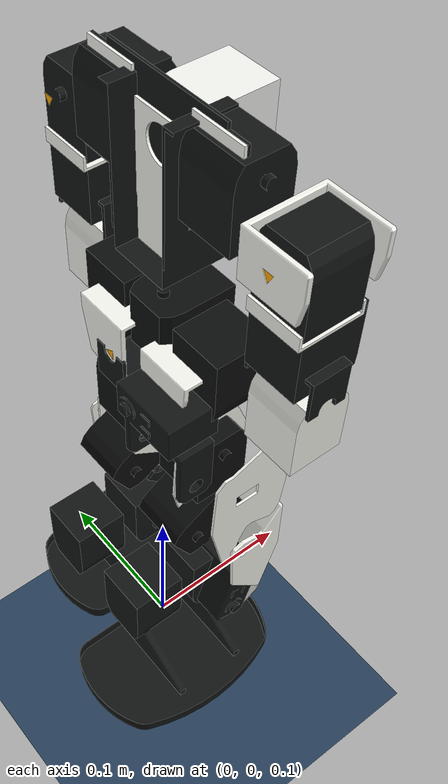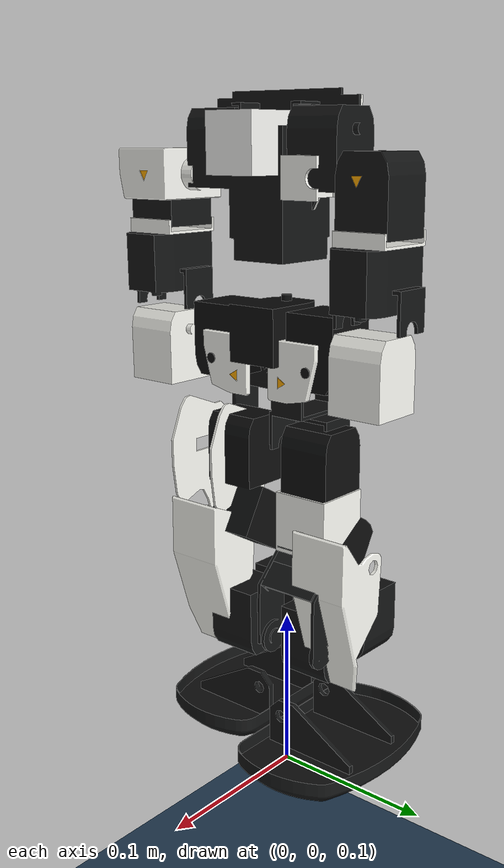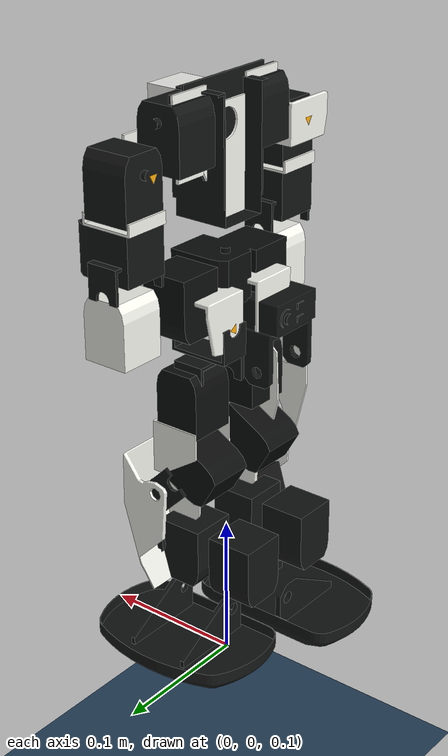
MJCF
<mujoco model="roid1_20260103d_mjcf scene">
  <include file="roid1_20260103d_mjcf.xml"/>

  <statistic center="0 0 0.500000" extent="0.800000"/>

  <visual>
    <headlight diffuse="0.6 0.6 0.6" ambient="0.3 0.3 0.3" specular="0 0 0"/>
    <rgba haze="0.15 0.25 0.35 1"/>
    <global azimuth="-130" elevation="-20"/>
  </visual>

  <asset>
    <texture type="skybox" builtin="gradient" rgb1="0.3 0.5 0.7" rgb2="0 0 0" width="512" height="3072"/>
    <texture type="2d" name="groundplane" builtin="checker" mark="edge" rgb1="0.2 0.3 0.4" rgb2="0.1 0.2 0.3"
      markrgb="0.8 0.8 0.8" width="300" height="300"/>
    <material name="groundplane" texture="groundplane" texuniform="true" texrepeat="5 5" reflectance="0.2"/>
  </asset>

  <worldbody>
    <!-- Ground/Environment -->
    <light pos="0 0 1.5" dir="0 0 -1" directional="true"/>
    <geom name="floor" size="0 0 0.05" type="plane" material="groundplane" group="0"/>
  </worldbody>
</mujoco>

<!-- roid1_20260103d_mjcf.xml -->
<mujoco model="roid1_20260103d_mjcf">
  <compiler angle="radian" meshdir="assets" autolimits="true" />

  <option cone="elliptic" impratio="100" />

  <default>
    <!-- 共通設定 -->
    <joint damping="0.1" armature="0.01" frictionloss="0.2"/>
    <motor ctrlrange="-23.7 23.7"/>
    <geom friction="0.4" margin="0.001" condim="3"/>
    <!-- コライダー用：group=0 -->
    <default class="collision">
      <geom group="0"/>
    </default>
    <!-- ビジュアル用：group=1（衝突しない） -->
    <default class="visual">
      <geom contype="0" conaffinity="0" group="1"/>
    </default>
  </default>

  <asset>
    <material name="metal" rgba=".9 .95 .95 1" />
    <material name="black" rgba="0 0 0 1" />
    <material name="white" rgba="1 1 1 1" />
    <material name="gray" rgba="0.671705 0.692426 0.774270 1" />

    <mesh name="c_chest" file="c_chest.obj" />
    <mesh name="c_chest_dec1" file="c_chest_dec1.obj" />
    <mesh name="c_chest_dec2" file="c_chest_dec2.obj" />
    <mesh name="c_head" file="c_head.obj" />
    <mesh name="c_waist" file="c_waist.obj" />
    <mesh name="l_ankle" file="l_ankle.obj" />
    <mesh name="l_arm_lower" file="l_arm_lower.obj" />
    <mesh name="l_arm_upper" file="l_arm_upper.obj" />
    <mesh name="l_arm_upper_dec1" file="l_arm_upper_dec1.obj" />
    <mesh name="l_elbow" file="l_elbow.obj" />
    <mesh name="l_foot_large" file="l_foot_large.obj" />
    <mesh name="l_hipjoint_lower" file="l_hipjoint_lower.obj" />
    <mesh name="l_hipjoint_upper" file="l_hipjoint_upper.obj" />
    <mesh name="l_hipjoint_upper_dec1" file="l_hipjoint_upper_dec1.obj" />
    <mesh name="l_leg_lower" file="l_leg_lower.obj" />
    <mesh name="l_leg_lower_dec1" file="l_leg_lower_dec1.obj" />
    <mesh name="l_leg_upper" file="l_leg_upper.obj" />
    <mesh name="l_leg_upper_dec1" file="l_leg_upper_dec1.obj" />
    <mesh name="l_shoulder" file="l_shoulder.obj" />
    <mesh name="l_shoulder_dec1" file="l_shoulder_dec1.obj" />
    <mesh name="r_ankle" file="r_ankle.obj" />
    <mesh name="r_arm_lower" file="r_arm_lower.obj" />
    <mesh name="r_arm_upper" file="r_arm_upper.obj" />
    <mesh name="r_arm_upper_dec1" file="r_arm_upper_dec1.obj" />
    <mesh name="r_elbow" file="r_elbow.obj" />
    <mesh name="r_foot_large" file="r_foot_large.obj" />
    <mesh name="r_hipjoint_lower" file="r_hipjoint_lower.obj" />
    <mesh name="r_hipjoint_upper" file="r_hipjoint_upper.obj" />
    <mesh name="r_hipjoint_upper_dec1" file="r_hipjoint_upper_dec1.obj" />
    <mesh name="r_leg_lower" file="r_leg_lower.obj" />
    <mesh name="r_leg_lower_dec1" file="r_leg_lower_dec1.obj" />
    <mesh name="r_leg_upper" file="r_leg_upper.obj" />
    <mesh name="r_leg_upper_dec1" file="r_leg_upper_dec1.obj" />
    <mesh name="r_shoulder" file="r_shoulder.obj" />
    <mesh name="r_shoulder_dec1" file="r_shoulder_dec1.obj" />
  </asset>

  <worldbody>
    <body name="base_link" pos="0 0 0.4">
      <freejoint />
      <body name="c_waist">
        <inertial pos="0 0 0" mass="0.1428" fullinertia="0.00007919 0.00007087 0.0001035 0.00000007 -0.00000104 -0.00000051" />
        <!-- ビジュアル（表示用） -->
        <geom class="visual" type="mesh" mesh="c_waist" rgba="0.043 0.047 0.047 1.0" group="1"/>
        <!-- コライダー（衝突判定用） -->
        <geom class="collision" type="box" size="0.0205 0.03205 0.01525" pos="-0.0115 0.0 0.0" quat="1.0 0.0 0.0 0.0" group="3"/>
        <body name="c_chest" pos="0.0 0.0 0.01975">
          <joint name="c_chest_joint" type="hinge" pos="0 0 0" axis="0 0 1" range="-3.141592653589793 3.141592653589793" limited="true" margin="0.05" armature="0.01" frictionloss="0.08" damping="18" />
          <inertial pos="-0.009945 -0.000138 0.032669" mass="0.4215" fullinertia="0.00069128 0.00091017 0.0009531 0.00000049 0.00000222 0.00000725" />
          <!-- ビジュアル（表示用） -->
          <geom class="visual" type="mesh" mesh="c_chest" rgba="0.071 0.075 0.075 1.0" group="1"/>
          <!-- コライダー（衝突判定用） -->
          <geom class="collision" type="box" size="0.05365 0.04655 0.0328" pos="-0.0181 -0.0002 0.0321" quat="1.0 0.0 0.0 0.0" group="3"/>
          <body name="c_head" pos="0.01602 0.0 0.0624">
            <joint name="c_head_joint" type="hinge" pos="0 0 0" axis="0 0 1" range="-3.141592653589793 3.141592653589793" limited="true" margin="0.05" armature="0.01" frictionloss="0.08" damping="18" />
            <inertial pos="0.004414 0.000003 0.02119" mass="0.013" fullinertia="0.00000411 0.00000529 0.00000498 -0.00000003 0.00000011 -0.00000005" />
            <!-- ビジュアル（表示用） -->
            <geom class="visual" type="mesh" mesh="c_head" rgba="0.949 0.949 0.937 1.0" group="1"/>
            <!-- コライダー（衝突判定用） -->
            <geom class="collision" type="box" size="0.0245 0.015 0.01575" pos="0.0032 0.0 0.0237" quat="1.0 0.0 0.0 0.0" group="3"/>
          </body>
          <body name="l_shoulder" pos="0.016114 0.04885 0.0454">
            <joint name="l_shoulder_joint" type="hinge" pos="0 0 0" axis="0 1 0" range="-3.141592653589793 3.141592653589793" limited="true" margin="0.05" armature="0.01" frictionloss="0.08" damping="18" />
            <inertial pos="-0.000143 0.018036 0.000103" mass="0.014" fullinertia="0.00000306 0.00000465 0.00000567 0.00000001 0.00000007 0.00000011" />
            <!-- ビジュアル（表示用） -->
            <geom class="visual" type="mesh" mesh="l_shoulder" rgba="0.957 0.957 0.933 1.0" group="1"/>
            <!-- コライダー（衝突判定用） -->
            <geom class="collision" type="cylinder" size="0.0097 0.0035" pos="0.0 0.004 0.0" quat="0.7071067811865476 -0.7071067811865475 0.0 -0.0" group="3"/>
            <body name="l_arm_upper" pos="0.0 0.02555 -0.0">
              <joint name="l_arm_upper_joint" type="hinge" pos="0 0 0" axis="1 0 0" range="-0.261799387799149 3.403392041388943" limited="true" margin="0.05" armature="0.01" frictionloss="0.08" damping="18" />
              <inertial pos="-0.006126 0.000034 -0.031016" mass="0.098" fullinertia="0.00006512 0.00007176 0.0000327 0.00000023 -0.00000948 0.00000013" />
              <!-- ビジュアル（表示用） -->
              <geom class="visual" type="mesh" mesh="l_arm_upper" rgba="0.071 0.075 0.075 1.0" group="1"/>
              <!-- コライダー（衝突判定用） -->
              <geom class="collision" type="box" size="0.01195 0.01045 0.039" pos="-0.0032 0.0 -0.0305" quat="1.0 0.0 0.0 0.0" group="3"/>
              <body name="l_elbow" pos="-0.00035 0.0 -0.074075">
                <joint name="l_elbow_joint" type="hinge" pos="0 0 0" axis="0 0 1" range="-1.570796326794897 1.570796326794897" limited="true" margin="0.05" armature="0.01" frictionloss="0.08" damping="18" />
                <inertial pos="-0.006581 0.000258 -0.014196" mass="0.044" fullinertia="0.0000105 0.00001256 0.00001357 -0.00000017 -0.00000014 0.00000016" />
                <!-- ビジュアル（表示用） -->
                <geom class="visual" type="mesh" mesh="l_elbow" rgba="0.071 0.075 0.075 1.0" group="1"/>
                <!-- コライダー（衝突判定用） -->
                <geom class="collision" type="box" size="0.0205 0.01505 0.01005" pos="-0.007 -0.0005 -0.0145" quat="1.0 0.0 0.0 0.0" group="3"/>
                <body name="l_arm_lower" pos="0.00453 0.0 -0.014575">
                  <joint name="l_arm_lower_joint" type="hinge" pos="0 0 0" axis="0 1 0" range="-2.530727415391778 0.523598775598299" limited="true" margin="0.05" armature="0.01" frictionloss="0.08" damping="18" />
                  <inertial pos="-0.002115 0.00035 -0.043518" mass="0.03" fullinertia="0.00005297 0.00005125 0.00001247 0.00000021 -0.00000013 0.0000004" />
                  <!-- ビジュアル（表示用） -->
                  <geom class="visual" type="mesh" mesh="l_arm_lower" rgba="0.957 0.957 0.929 1.0" group="1"/>
                  <!-- コライダー（衝突判定用） -->
                  <geom class="collision" type="box" size="0.01315 0.01475 0.03505" pos="-0.0022 0.0 -0.0646" quat="1.0 0.0 0.0 0.0" group="3"/>
                </body>
              </body>
              <geom class="visual" type="mesh" mesh="l_arm_upper_dec1" rgba="0.957 0.957 0.929 1.0" pos="0.0 0.0 0.0"/>
            </body>
            <geom class="visual" type="mesh" mesh="l_shoulder_dec1" rgba="1.0 0.667 0.0 1.0" pos="0.0 0.0 0.0"/>
          </body>
          <body name="r_shoulder" pos="0.016114 -0.04885 0.0454">
            <joint name="r_shoulder_joint" type="hinge" pos="0 0 0" axis="0 1 0" range="-3.141592653589793 3.141592653589793" limited="true" margin="0.05" armature="0.01" frictionloss="0.08" damping="18" />
            <inertial pos="-0.000143 -0.018036 0.000103" mass="0.014" fullinertia="0.00000306 0.00000465 0.00000567 -0.00000001 0.00000007 -0.00000011" />
            <!-- ビジュアル（表示用） -->
            <geom class="visual" type="mesh" mesh="r_shoulder" rgba="0.957 0.957 0.933 1.0" group="1"/>
            <!-- コライダー（衝突判定用） -->
            <geom class="collision" type="cylinder" size="0.0097 0.0035" pos="0.0 -0.004 0.0" quat="0.7071067811865476 0.7071067811865475 0.0 0.0" group="3"/>
            <body name="r_arm_upper" pos="0.0 -0.02555 -0.0">
              <joint name="r_arm_upper_joint" type="hinge" pos="0 0 0" axis="1 0 0" range="-3.403392041388943 0.261799387799149" limited="true" margin="0.05" armature="0.01" frictionloss="0.08" damping="18" />
              <inertial pos="-0.006126 -0.000034 -0.031016" mass="0.098" fullinertia="0.00006512 0.00007176 0.0000327 -0.00000023 -0.00000948 -0.00000013" />
              <!-- ビジュアル（表示用） -->
              <geom class="visual" type="mesh" mesh="r_arm_upper" rgba="0.071 0.075 0.075 1.0" group="1"/>
              <!-- コライダー（衝突判定用） -->
              <geom class="collision" type="box" size="0.01195 0.01045 0.039" pos="-0.0032 -0.0 -0.0305" quat="1.0 0.0 0.0 0.0" group="3"/>
              <body name="r_elbow" pos="-0.00035 -0.0 -0.074075">
                <joint name="r_elbow_joint" type="hinge" pos="0 0 0" axis="0 0 1" range="-1.570796326794897 1.570796326794897" limited="true" margin="0.05" armature="0.01" frictionloss="0.08" damping="18" />
                <inertial pos="-0.006581 -0.000258 -0.014196" mass="0.044" fullinertia="0.0000105 0.00001256 0.00001357 0.00000017 -0.00000014 -0.00000016" />
                <!-- ビジュアル（表示用） -->
                <geom class="visual" type="mesh" mesh="r_elbow" rgba="0.071 0.075 0.075 1.0" group="1"/>
                <!-- コライダー（衝突判定用） -->
                <geom class="collision" type="box" size="0.0205 0.01505 0.01005" pos="-0.007 0.0005 -0.0145" quat="1.0 0.0 0.0 0.0" group="3"/>
                <body name="r_arm_lower" pos="0.00453 -0.0 -0.014575">
                  <joint name="r_arm_lower_joint" type="hinge" pos="0 0 0" axis="0 1 0" range="-2.530727415391778 0.523598775598299" limited="true" margin="0.05" armature="0.01" frictionloss="0.08" damping="18" />
                  <inertial pos="-0.002115 -0.00035 -0.043518" mass="0.03" fullinertia="0.00005297 0.00005125 0.00001247 -0.00000021 -0.00000013 -0.0000004" />
                  <!-- ビジュアル（表示用） -->
                  <geom class="visual" type="mesh" mesh="r_arm_lower" rgba="0.957 0.957 0.929 1.0" group="1"/>
                  <!-- コライダー（衝突判定用） -->
                  <geom class="collision" type="box" size="0.01315 0.01475 0.03505" pos="-0.0022 -0.0 -0.0646" quat="1.0 0.0 0.0 0.0" group="3"/>
                </body>
              </body>
              <geom class="visual" type="mesh" mesh="r_arm_upper_dec1" rgba="0.957 0.957 0.929 1.0" pos="0.0 -0.0 0.0"/>
            </body>
            <geom class="visual" type="mesh" mesh="r_shoulder_dec1" rgba="1.0 0.667 0.0 1.0" pos="0.0 -0.0 0.0"/>
          </body>
          <geom class="visual" type="mesh" mesh="c_chest_dec1" rgba="0.957 0.957 0.933 1.0" pos="0.0 0.0 0.0"/>
          <geom class="visual" type="mesh" mesh="c_chest_dec2" rgba="0.071 0.075 0.075 1.0" pos="0.0 0.0 0.0"/>
        </body>
        <body name="l_hipjoint_upper" pos="0.0 0.02156 -0.021806">
          <joint name="l_hipjoint_upper_joint" type="hinge" pos="0 0 0" axis="0 0 1" range="-0.349065850398866 0.785398163397448" limited="true" margin="0.05" armature="0.01" frictionloss="0.08" damping="18" />
          <inertial pos="0.002365 0.002237 -0.01069" mass="0.0115" fullinertia="0.00000383 0.00000646 0.00000618 0.00000001 -0.00000019 0.00000007" />
          <!-- ビジュアル（表示用） -->
          <geom class="visual" type="mesh" mesh="l_hipjoint_upper" rgba="0.957 0.957 0.929 1.0" group="1"/>
          <!-- コライダー（衝突判定用） -->
          <geom class="collision" type="box" size="0.02275 0.014 0.002" pos="0.0031 -0.0001 -0.0017" quat="1.0 0.0 0.0 0.0" group="3"/>
          <body name="l_hipjoint_lower" pos="9.9e-05 -0.00455 -0.0232">
            <joint name="l_hipjoint_lower_joint" type="hinge" pos="0 0 0" axis="1 0 0" range="-1.047197551196598 0.523598775598299" limited="true" margin="0.05" armature="0.01" frictionloss="0.08" damping="18" />
            <inertial pos="0.003874 0.013471 -0.00485" mass="0.058" fullinertia="0.00002572 0.00001803 0.00002194 0.00000022 -0.00000016 0.00000012" />
            <!-- ビジュアル（表示用） -->
            <geom class="visual" type="mesh" mesh="l_hipjoint_lower" rgba="0.071 0.075 0.075 1.0" group="1"/>
            <!-- コライダー（衝突判定用） -->
            <geom class="collision" type="box" size="0.01505 0.02025 0.01045" pos="0.0041 0.0116 0.0" quat="1.0 0.0 0.0 0.0" group="3"/>
            <body name="l_leg_upper" pos="0.004099 0.011502 -0.038508">
              <joint name="l_leg_upper_joint" type="hinge" pos="0 0 0" axis="0 1 0" range="-1.48352986419518 1.570796326794897" limited="true" margin="0.05" armature="0.01" frictionloss="0.08" damping="18" />
              <inertial pos="0.004137 -0.00005 -0.032305" mass="0.091" fullinertia="0.00006864 0.00006946 0.0000304 0.00000008 0.00000192 0.00000033" />
              <!-- ビジュアル（表示用） -->
              <geom class="visual" type="mesh" mesh="l_leg_upper" rgba="0.043 0.047 0.047 1.0" group="1"/>
              <!-- コライダー（衝突判定用） -->
              <geom class="collision" type="box" size="0.01715 0.01705 0.03125" pos="0.0079 -0.0007 -0.022" quat="1.0 0.0 0.0 0.0" group="3"/>
              <body name="l_leg_lower" pos="0.0 0.0 -0.065008">
                <joint name="l_leg_lower_joint" type="hinge" pos="0 0 0" axis="0 1 0" range="-0.087266462599716 2.443460952792061" limited="true" margin="0.05" armature="0.01" frictionloss="0.08" damping="18" />
                <inertial pos="0.005243 0.000013 -0.04" mass="0.061" fullinertia="0.00002369 0.00002306 0.00001526 -0.00000003 -0.00000127 -0.00000055" />
                <!-- ビジュアル（表示用） -->
                <geom class="visual" type="mesh" mesh="l_leg_lower" rgba="0.071 0.075 0.075 1.0" group="1"/>
                <!-- コライダー（衝突判定用） -->
                <geom class="collision" type="box" size="0.01025 0.01505 0.02" pos="0.0033 0.0003 -0.0542" quat="0.9896513868196702 0.0 0.14349262199117932 0.0" group="3"/>
                <body name="l_ankle" pos="0.0 0.0 -0.065208">
                  <joint name="l_ankle_joint" type="hinge" pos="0 0 0" axis="0 1 0" range="-1.658062789394613 2.007128639793479" limited="true" margin="0.05" armature="0.01" frictionloss="0.08" damping="18" />
                  <inertial pos="0.001265 0.000117 -0.032317" mass="0.058" fullinertia="0.00003283 0.00002872 0.00002188 0.00000035 -0.00000054 -0.00000012" />
                  <!-- ビジュアル（表示用） -->
                  <geom class="visual" type="mesh" mesh="l_ankle" rgba="0.071 0.075 0.075 1.0" group="1"/>
                  <!-- コライダー（衝突判定用） -->
                  <geom class="collision" type="box" size="0.01505 0.02125 0.00945" pos="-0.0002 -0.0 -0.0385" quat="1.0 0.0 0.0 0.0" group="3"/>
                  <body name="l_foot_large" pos="-0.00035 -0.0115 -0.038475">
                    <joint name="l_foot_large_joint" type="hinge" pos="0 0 0" axis="1 0 0" range="-1.570796326794897 0.349065850398866" limited="true" margin="0.05" armature="0.01" frictionloss="0.08" damping="18" />
                    <inertial pos="0.000075 0.023861 -0.020448" mass="0.045" fullinertia="0.00003464 0.00005428 0.00006643 -0.00000071 0.00000022 0.0000006" />
                    <!-- ビジュアル（表示用） -->
                    <geom class="visual" type="mesh" mesh="l_foot_large" rgba="0.071 0.075 0.075 1.0" group="1"/>
                    <!-- コライダー（衝突判定用） -->
                    <geom class="collision" type="box" size="0.0539 0.0335 0.0047" pos="0.0001 0.0256 -0.0207" quat="1.0 0.0 0.0 0.0" group="3"/>
                  </body>
                </body>
                <geom class="visual" type="mesh" mesh="l_leg_lower_dec1" rgba="0.957 0.957 0.929 1.0" pos="0.0 0.0 0.0"/>
              </body>
              <geom class="visual" type="mesh" mesh="l_leg_upper_dec1" rgba="0.957 0.957 0.929 1.0" pos="0.0 0.0 0.0"/>
            </body>
          </body>
          <geom class="visual" type="mesh" mesh="l_hipjoint_upper_dec1" rgba="1.0 0.667 0.0 1.0" pos="0.0 0.0 0.0"/>
        </body>
        <body name="r_hipjoint_upper" pos="0.0 -0.02156 -0.021806">
          <joint name="r_hipjoint_upper_joint" type="hinge" pos="0 0 0" axis="0 0 1" range="-0.785398163397448 0.349065850398866" limited="true" margin="0.05" armature="0.01" frictionloss="0.08" damping="18" />
          <inertial pos="0.002365 -0.002237 -0.01069" mass="0.0115" fullinertia="0.00000383 0.00000646 0.00000618 -0.00000001 -0.00000019 -0.00000007" />
          <!-- ビジュアル（表示用） -->
          <geom class="visual" type="mesh" mesh="r_hipjoint_upper" rgba="0.957 0.957 0.929 1.0" group="1"/>
          <!-- コライダー（衝突判定用） -->
          <geom class="collision" type="box" size="0.02275 0.014 0.002" pos="0.0031 0.0001 -0.0017" quat="1.0 0.0 0.0 0.0" group="3"/>
          <body name="r_hipjoint_lower" pos="9.9e-05 0.00455 -0.0232">
            <joint name="r_hipjoint_lower_joint" type="hinge" pos="0 0 0" axis="1 0 0" range="-0.523598775598299 1.047197551196598" limited="true" margin="0.05" armature="0.01" frictionloss="0.08" damping="18" />
            <inertial pos="0.003874 -0.013471 -0.00485" mass="0.058" fullinertia="0.00002572 0.00001803 0.00002194 -0.00000022 -0.00000016 -0.00000012" />
            <!-- ビジュアル（表示用） -->
            <geom class="visual" type="mesh" mesh="r_hipjoint_lower" rgba="0.071 0.075 0.075 1.0" group="1"/>
            <!-- コライダー（衝突判定用） -->
            <geom class="collision" type="box" size="0.01505 0.02025 0.01045" pos="0.0041 -0.0116 0.0" quat="1.0 0.0 0.0 0.0" group="3"/>
            <body name="r_leg_upper" pos="0.004099 -0.011502 -0.038508">
              <joint name="r_leg_upper_joint" type="hinge" pos="0 0 0" axis="0 1 0" range="-1.48352986419518 1.570796326794897" limited="true" margin="0.05" armature="0.01" frictionloss="0.08" damping="18" />
              <inertial pos="0.004137 0.00005 -0.032305" mass="0.091" fullinertia="0.00006864 0.00006946 0.0000304 -0.00000008 0.00000192 -0.00000033" />
              <!-- ビジュアル（表示用） -->
              <geom class="visual" type="mesh" mesh="r_leg_upper" rgba="0.043 0.047 0.047 1.0" group="1"/>
              <!-- コライダー（衝突判定用） -->
              <geom class="collision" type="box" size="0.01715 0.01705 0.03125" pos="0.0079 0.0007 -0.022" quat="1.0 0.0 0.0 0.0" group="3"/>
              <body name="r_leg_lower" pos="0.0 -0.0 -0.065008">
                <joint name="r_leg_lower_joint" type="hinge" pos="0 0 0" axis="0 1 0" range="-0.087266462599716 2.443460952792061" limited="true" margin="0.05" armature="0.01" frictionloss="0.08" damping="18" />
                <inertial pos="0.005243 -0.000013 -0.04" mass="0.061" fullinertia="0.00002369 0.00002306 0.00001526 0.00000003 -0.00000127 0.00000055" />
                <!-- ビジュアル（表示用） -->
                <geom class="visual" type="mesh" mesh="r_leg_lower" rgba="0.071 0.075 0.075 1.0" group="1"/>
                <!-- コライダー（衝突判定用） -->
                <geom class="collision" type="box" size="0.01025 0.01505 0.02" pos="0.0033 -0.0003 -0.0542" quat="0.9896513868196702 0.0 0.14349262199117932 0.0" group="3"/>
                <body name="r_ankle" pos="0.0 -0.0 -0.065208">
                  <joint name="r_ankle_joint" type="hinge" pos="0 0 0" axis="0 1 0" range="-1.658062789394613 2.007128639793479" limited="true" margin="0.05" armature="0.01" frictionloss="0.08" damping="18" />
                  <inertial pos="0.001265 -0.000117 -0.032317" mass="0.058" fullinertia="0.00003283 0.00002872 0.00002188 -0.00000035 -0.00000054 0.00000012" />
                  <!-- ビジュアル（表示用） -->
                  <geom class="visual" type="mesh" mesh="r_ankle" rgba="0.071 0.075 0.075 1.0" group="1"/>
                  <!-- コライダー（衝突判定用） -->
                  <geom class="collision" type="box" size="0.01505 0.02125 0.00945" pos="-0.0002 0.0 -0.0385" quat="1.0 0.0 0.0 0.0" group="3"/>
                  <body name="r_foot_large" pos="-0.00035 0.0115 -0.038475">
                    <joint name="r_foot_large_joint" type="hinge" pos="0 0 0" axis="1 0 0" range="-0.349065850398866 1.570796326794897" limited="true" margin="0.05" armature="0.01" frictionloss="0.08" damping="18" />
                    <inertial pos="0.000075 -0.023861 -0.020448" mass="0.045" fullinertia="0.00003464 0.00005428 0.00006643 0.00000071 0.00000022 -0.0000006" />
                    <!-- ビジュアル（表示用） -->
                    <geom class="visual" type="mesh" mesh="r_foot_large" rgba="0.071 0.075 0.075 1.0" group="1"/>
                    <!-- コライダー（衝突判定用） -->
                    <geom class="collision" type="box" size="0.0539 0.0335 0.0047" pos="0.0001 -0.0256 -0.0207" quat="1.0 0.0 0.0 0.0" group="3"/>
                  </body>
                </body>
                <geom class="visual" type="mesh" mesh="r_leg_lower_dec1" rgba="0.957 0.957 0.929 1.0" pos="0.0 -0.0 0.0"/>
              </body>
              <geom class="visual" type="mesh" mesh="r_leg_upper_dec1" rgba="0.957 0.957 0.929 1.0" pos="0.0 -0.0 0.0"/>
            </body>
          </body>
          <geom class="visual" type="mesh" mesh="r_hipjoint_upper_dec1" rgba="1.0 0.667 0.0 1.0" pos="0.0 -0.0 0.0"/>
        </body>
      </body>
      <inertial pos="0 0 0" mass="0.001" diaginertia="1e-6 1e-6 1e-6"/>
    </body>
  </worldbody>

  <actuator>
    <position name="c_chest_actuator" joint="c_chest_joint" kp="100.0" ctrlrange="-3.141592653589793 3.141592653589793"/>
    <position name="c_head_actuator" joint="c_head_joint" kp="100.0" ctrlrange="-3.141592653589793 3.141592653589793"/>
    <position name="l_shoulder_actuator" joint="l_shoulder_joint" kp="100.0" ctrlrange="-3.141592653589793 3.141592653589793"/>
    <position name="l_arm_upper_actuator" joint="l_arm_upper_joint" kp="100.0" ctrlrange="-0.2617993877991494 3.4033920413889427"/>
    <position name="l_elbow_actuator" joint="l_elbow_joint" kp="100.0" ctrlrange="-1.5707963267948966 1.5707963267948966"/>
    <position name="l_arm_lower_actuator" joint="l_arm_lower_joint" kp="100.0" ctrlrange="-2.530727415391778 0.5235987755982988"/>
    <position name="r_shoulder_actuator" joint="r_shoulder_joint" kp="100.0" ctrlrange="-3.141592653589793 3.141592653589793"/>
    <position name="r_arm_upper_actuator" joint="r_arm_upper_joint" kp="100.0" ctrlrange="-3.4033920413889427 0.2617993877991494"/>
    <position name="r_elbow_actuator" joint="r_elbow_joint" kp="100.0" ctrlrange="-1.5707963267948966 1.5707963267948966"/>
    <position name="r_arm_lower_actuator" joint="r_arm_lower_joint" kp="100.0" ctrlrange="-2.530727415391778 0.5235987755982988"/>
    <position name="l_hipjoint_upper_actuator" joint="l_hipjoint_upper_joint" kp="100.0" ctrlrange="-0.3490658503988659 0.7853981633974483"/>
    <position name="l_hipjoint_lower_actuator" joint="l_hipjoint_lower_joint" kp="100.0" ctrlrange="-1.0471975511965976 0.5235987755982988"/>
    <position name="l_leg_upper_actuator" joint="l_leg_upper_joint" kp="100.0" ctrlrange="-1.4835298641951802 1.5707963267948966"/>
    <position name="l_leg_lower_actuator" joint="l_leg_lower_joint" kp="100.0" ctrlrange="-0.08726646259971647 2.443460952792061"/>
    <position name="l_ankle_actuator" joint="l_ankle_joint" kp="100.0" ctrlrange="-1.6580627893946132 2.007128639793479"/>
    <position name="l_foot_large_actuator" joint="l_foot_large_joint" kp="100.0" ctrlrange="-1.5707963267948966 0.3490658503988659"/>
    <position name="r_hipjoint_upper_actuator" joint="r_hipjoint_upper_joint" kp="100.0" ctrlrange="-0.7853981633974483 0.3490658503988659"/>
    <position name="r_hipjoint_lower_actuator" joint="r_hipjoint_lower_joint" kp="100.0" ctrlrange="-0.5235987755982988 1.0471975511965976"/>
    <position name="r_leg_upper_actuator" joint="r_leg_upper_joint" kp="100.0" ctrlrange="-1.4835298641951802 1.5707963267948966"/>
    <position name="r_leg_lower_actuator" joint="r_leg_lower_joint" kp="100.0" ctrlrange="-0.08726646259971647 2.443460952792061"/>
    <position name="r_ankle_actuator" joint="r_ankle_joint" kp="100.0" ctrlrange="-1.6580627893946132 2.007128639793479"/>
    <position name="r_foot_large_actuator" joint="r_foot_large_joint" kp="100.0" ctrlrange="-0.3490658503988659 1.5707963267948966"/>
  </actuator>

  <sensor>
    <!-- Add sensors here if needed -->
  </sensor>
</mujoco>
